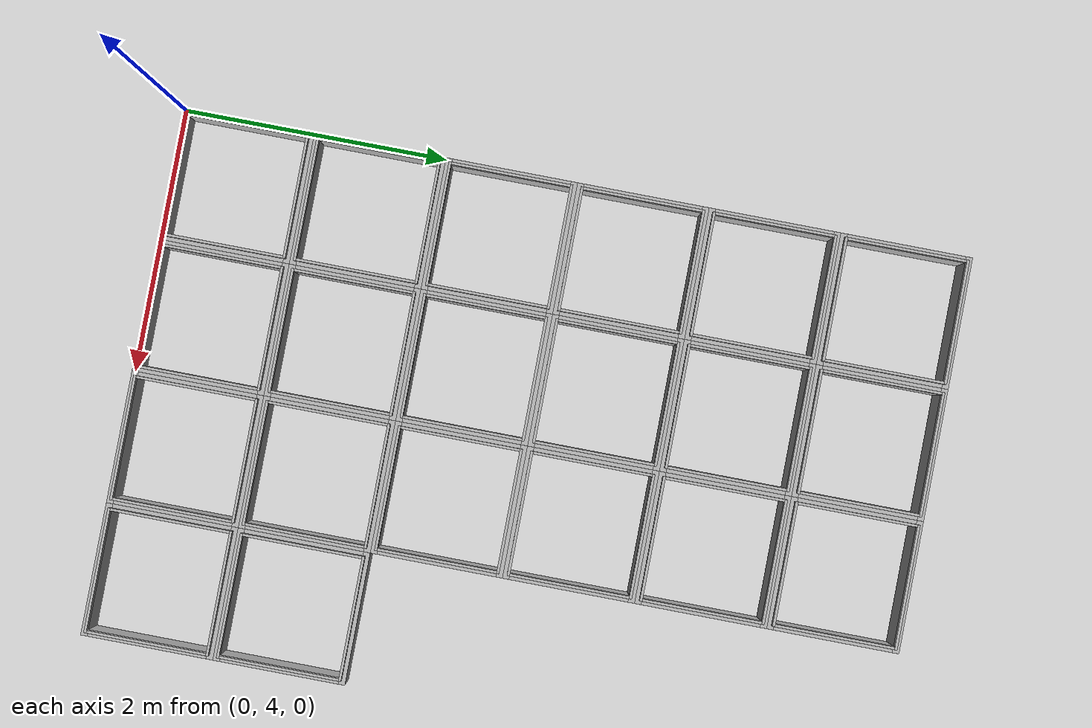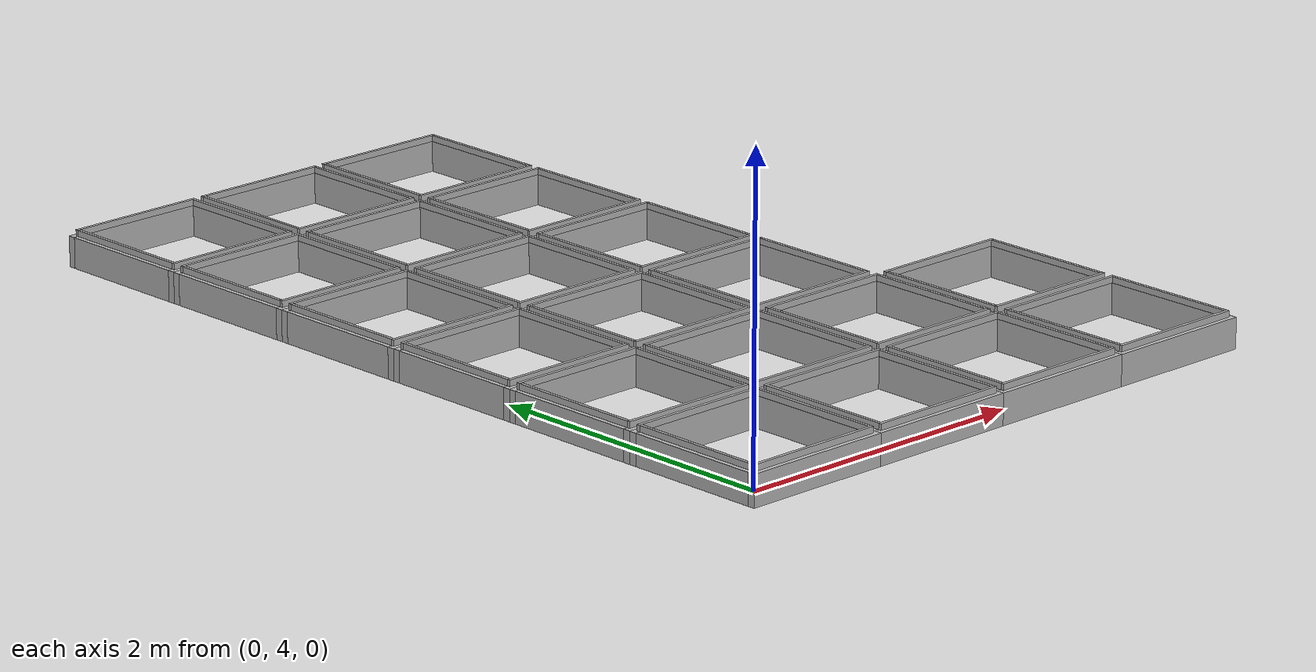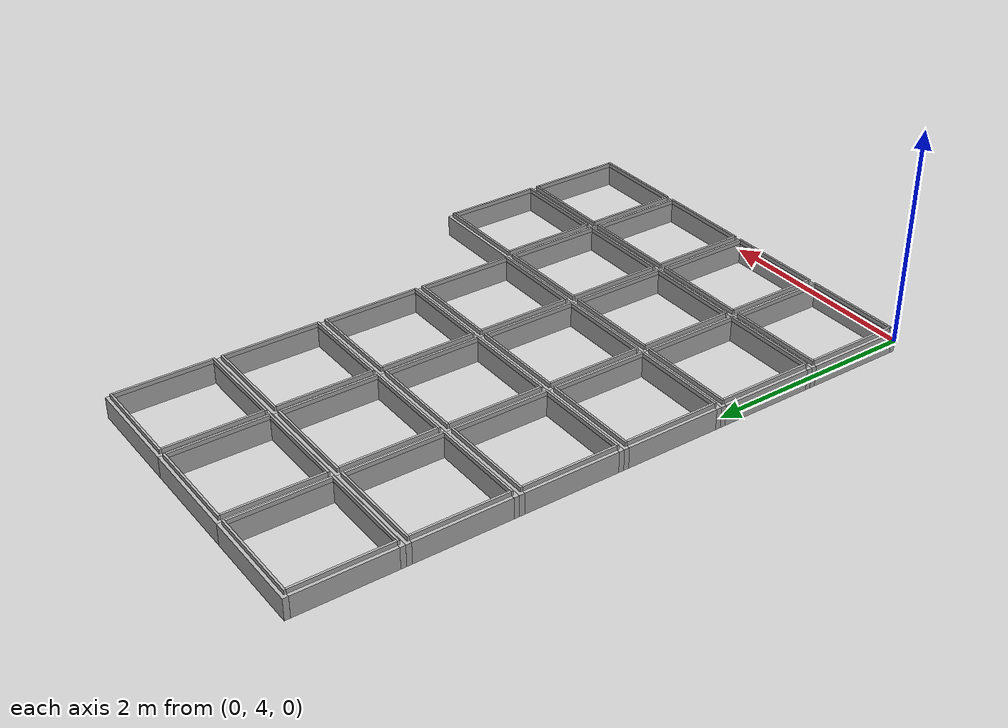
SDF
<sdf version="1.4">
 <model name="Auto Store Frame">
  <static>true</static>
  <link name="cell_04">
   <pose>0.5 4.5 0 0 0 0</pose>
   <collision name="frame_collision_x1">
    <pose>0 -0.475 0 0 0 0</pose>
    <geometry><box><size>1 0.05 0.2 0 0 0</size></box></geometry>
   </collision>
   <collision name="frame_collision_x2">
    <pose>0 0.475 0 0 0 0</pose>
    <geometry><box><size>1 0.05 0.2 0 0 0</size></box></geometry>
   </collision>
   <collision name="frame_collision_y1">
    <pose>-0.475 0 0 0 0 0</pose>
    <geometry><box><size>0.05 0.9 0.2 0 0 0</size></box></geometry>
   </collision>
   <collision name="frame_collision_y2">
    <pose>0.475 0 0 0 0 0</pose>
    <geometry><box><size>0.05 0.9 0.2 0 0 0</size></box></geometry>
   </collision>
   <collision name="guide_collision_x1">
    <pose>0 -0.46 0.12 0 0 0</pose>
    <geometry><box><size>0.94 0.02 0.04 0 0 0</size></box></geometry>
   </collision>
   <collision name="guide_collision_x2">
    <pose>0 0.46 0.12 0 0 0</pose>
    <geometry><box><size>0.94 0.02 0.04 0 0 0</size></box></geometry>
   </collision>
   <collision name="guide_collision_y1">
    <pose>-0.46 0 0.12 0 0 0</pose>
    <geometry><box><size>0.02 0.9 0.04 0 0 0</size></box></geometry>
   </collision>
   <collision name="guide_collision_y2">
    <pose>0.46 0 0.12 0 0 0</pose>
    <geometry><box><size>0.02 0.9 0.04 0 0 0</size></box></geometry>
   </collision>
   <visual name="frame_visual_x1">
    <pose>0 -0.475 0 0 0 0</pose>
    <geometry><box><size>1 0.05 0.2 0 0 0</size></box></geometry>
   </visual>
   <visual name="frame_visual_x2">
    <pose>0 0.475 0 0 0 0</pose>
    <geometry><box><size>1 0.05 0.2 0 0 0</size></box></geometry>
   </visual>
   <visual name="frame_visual_y1">
    <pose>-0.475 0 0 0 0 0</pose>
    <geometry><box><size>0.05 0.9 0.2 0 0 0</size></box></geometry>
   </visual>
   <visual name="frame_visual_y2">
    <pose>0.475 0 0 0 0 0</pose>
    <geometry><box><size>0.05 0.9 0.2 0 0 0</size></box></geometry>
   </visual>
   <visual name="guide_visual_x1">
    <pose>0 -0.46 0.12 0 0 0</pose>
    <geometry><box><size>0.94 0.02 0.04 0 0 0</size></box></geometry>
   </visual>
   <visual name="guide_visual_x2">
    <pose>0 0.46 0.12 0 0 0</pose>
    <geometry><box><size>0.94 0.02 0.04 0 0 0</size></box></geometry>
   </visual>
   <visual name="guide_visual_y1">
    <pose>-0.46 0 0.12 0 0 0</pose>
    <geometry><box><size>0.02 0.9 0.04 0 0 0</size></box></geometry>
   </visual>
   <visual name="guide_visual_y2">
    <pose>0.46 0 0.12 0 0 0</pose>
    <geometry><box><size>0.02 0.9 0.04 0 0 0</size></box></geometry>
   </visual>
  </link>
  <link name="cell_05">
   <pose>0.5 5.5 0 0 0 0</pose>
   <collision name="frame_collision_x1">
    <pose>0 -0.475 0 0 0 0</pose>
    <geometry><box><size>1 0.05 0.2 0 0 0</size></box></geometry>
   </collision>
   <collision name="frame_collision_x2">
    <pose>0 0.475 0 0 0 0</pose>
    <geometry><box><size>1 0.05 0.2 0 0 0</size></box></geometry>
   </collision>
   <collision name="frame_collision_y1">
    <pose>-0.475 0 0 0 0 0</pose>
    <geometry><box><size>0.05 0.9 0.2 0 0 0</size></box></geometry>
   </collision>
   <collision name="frame_collision_y2">
    <pose>0.475 0 0 0 0 0</pose>
    <geometry><box><size>0.05 0.9 0.2 0 0 0</size></box></geometry>
   </collision>
   <collision name="guide_collision_x1">
    <pose>0 -0.46 0.12 0 0 0</pose>
    <geometry><box><size>0.94 0.02 0.04 0 0 0</size></box></geometry>
   </collision>
   <collision name="guide_collision_x2">
    <pose>0 0.46 0.12 0 0 0</pose>
    <geometry><box><size>0.94 0.02 0.04 0 0 0</size></box></geometry>
   </collision>
   <collision name="guide_collision_y1">
    <pose>-0.46 0 0.12 0 0 0</pose>
    <geometry><box><size>0.02 0.9 0.04 0 0 0</size></box></geometry>
   </collision>
   <collision name="guide_collision_y2">
    <pose>0.46 0 0.12 0 0 0</pose>
    <geometry><box><size>0.02 0.9 0.04 0 0 0</size></box></geometry>
   </collision>
   <visual name="frame_visual_x1">
    <pose>0 -0.475 0 0 0 0</pose>
    <geometry><box><size>1 0.05 0.2 0 0 0</size></box></geometry>
   </visual>
   <visual name="frame_visual_x2">
    <pose>0 0.475 0 0 0 0</pose>
    <geometry><box><size>1 0.05 0.2 0 0 0</size></box></geometry>
   </visual>
   <visual name="frame_visual_y1">
    <pose>-0.475 0 0 0 0 0</pose>
    <geometry><box><size>0.05 0.9 0.2 0 0 0</size></box></geometry>
   </visual>
   <visual name="frame_visual_y2">
    <pose>0.475 0 0 0 0 0</pose>
    <geometry><box><size>0.05 0.9 0.2 0 0 0</size></box></geometry>
   </visual>
   <visual name="guide_visual_x1">
    <pose>0 -0.46 0.12 0 0 0</pose>
    <geometry><box><size>0.94 0.02 0.04 0 0 0</size></box></geometry>
   </visual>
   <visual name="guide_visual_x2">
    <pose>0 0.46 0.12 0 0 0</pose>
    <geometry><box><size>0.94 0.02 0.04 0 0 0</size></box></geometry>
   </visual>
   <visual name="guide_visual_y1">
    <pose>-0.46 0 0.12 0 0 0</pose>
    <geometry><box><size>0.02 0.9 0.04 0 0 0</size></box></geometry>
   </visual>
   <visual name="guide_visual_y2">
    <pose>0.46 0 0.12 0 0 0</pose>
    <geometry><box><size>0.02 0.9 0.04 0 0 0</size></box></geometry>
   </visual>
  </link>
  <link name="cell_06">
   <pose>0.5 6.5 0 0 0 0</pose>
   <collision name="frame_collision_x1">
    <pose>0 -0.475 0 0 0 0</pose>
    <geometry><box><size>1 0.05 0.2 0 0 0</size></box></geometry>
   </collision>
   <collision name="frame_collision_x2">
    <pose>0 0.475 0 0 0 0</pose>
    <geometry><box><size>1 0.05 0.2 0 0 0</size></box></geometry>
   </collision>
   <collision name="frame_collision_y1">
    <pose>-0.475 0 0 0 0 0</pose>
    <geometry><box><size>0.05 0.9 0.2 0 0 0</size></box></geometry>
   </collision>
   <collision name="frame_collision_y2">
    <pose>0.475 0 0 0 0 0</pose>
    <geometry><box><size>0.05 0.9 0.2 0 0 0</size></box></geometry>
   </collision>
   <collision name="guide_collision_x1">
    <pose>0 -0.46 0.12 0 0 0</pose>
    <geometry><box><size>0.94 0.02 0.04 0 0 0</size></box></geometry>
   </collision>
   <collision name="guide_collision_x2">
    <pose>0 0.46 0.12 0 0 0</pose>
    <geometry><box><size>0.94 0.02 0.04 0 0 0</size></box></geometry>
   </collision>
   <collision name="guide_collision_y1">
    <pose>-0.46 0 0.12 0 0 0</pose>
    <geometry><box><size>0.02 0.9 0.04 0 0 0</size></box></geometry>
   </collision>
   <collision name="guide_collision_y2">
    <pose>0.46 0 0.12 0 0 0</pose>
    <geometry><box><size>0.02 0.9 0.04 0 0 0</size></box></geometry>
   </collision>
   <visual name="frame_visual_x1">
    <pose>0 -0.475 0 0 0 0</pose>
    <geometry><box><size>1 0.05 0.2 0 0 0</size></box></geometry>
   </visual>
   <visual name="frame_visual_x2">
    <pose>0 0.475 0 0 0 0</pose>
    <geometry><box><size>1 0.05 0.2 0 0 0</size></box></geometry>
   </visual>
   <visual name="frame_visual_y1">
    <pose>-0.475 0 0 0 0 0</pose>
    <geometry><box><size>0.05 0.9 0.2 0 0 0</size></box></geometry>
   </visual>
   <visual name="frame_visual_y2">
    <pose>0.475 0 0 0 0 0</pose>
    <geometry><box><size>0.05 0.9 0.2 0 0 0</size></box></geometry>
   </visual>
   <visual name="guide_visual_x1">
    <pose>0 -0.46 0.12 0 0 0</pose>
    <geometry><box><size>0.94 0.02 0.04 0 0 0</size></box></geometry>
   </visual>
   <visual name="guide_visual_x2">
    <pose>0 0.46 0.12 0 0 0</pose>
    <geometry><box><size>0.94 0.02 0.04 0 0 0</size></box></geometry>
   </visual>
   <visual name="guide_visual_y1">
    <pose>-0.46 0 0.12 0 0 0</pose>
    <geometry><box><size>0.02 0.9 0.04 0 0 0</size></box></geometry>
   </visual>
   <visual name="guide_visual_y2">
    <pose>0.46 0 0.12 0 0 0</pose>
    <geometry><box><size>0.02 0.9 0.04 0 0 0</size></box></geometry>
   </visual>
  </link>
  <link name="cell_07">
   <pose>0.5 7.5 0 0 0 0</pose>
   <collision name="frame_collision_x1">
    <pose>0 -0.475 0 0 0 0</pose>
    <geometry><box><size>1 0.05 0.2 0 0 0</size></box></geometry>
   </collision>
   <collision name="frame_collision_x2">
    <pose>0 0.475 0 0 0 0</pose>
    <geometry><box><size>1 0.05 0.2 0 0 0</size></box></geometry>
   </collision>
   <collision name="frame_collision_y1">
    <pose>-0.475 0 0 0 0 0</pose>
    <geometry><box><size>0.05 0.9 0.2 0 0 0</size></box></geometry>
   </collision>
   <collision name="frame_collision_y2">
    <pose>0.475 0 0 0 0 0</pose>
    <geometry><box><size>0.05 0.9 0.2 0 0 0</size></box></geometry>
   </collision>
   <collision name="guide_collision_x1">
    <pose>0 -0.46 0.12 0 0 0</pose>
    <geometry><box><size>0.94 0.02 0.04 0 0 0</size></box></geometry>
   </collision>
   <collision name="guide_collision_x2">
    <pose>0 0.46 0.12 0 0 0</pose>
    <geometry><box><size>0.94 0.02 0.04 0 0 0</size></box></geometry>
   </collision>
   <collision name="guide_collision_y1">
    <pose>-0.46 0 0.12 0 0 0</pose>
    <geometry><box><size>0.02 0.9 0.04 0 0 0</size></box></geometry>
   </collision>
   <collision name="guide_collision_y2">
    <pose>0.46 0 0.12 0 0 0</pose>
    <geometry><box><size>0.02 0.9 0.04 0 0 0</size></box></geometry>
   </collision>
   <visual name="frame_visual_x1">
    <pose>0 -0.475 0 0 0 0</pose>
    <geometry><box><size>1 0.05 0.2 0 0 0</size></box></geometry>
   </visual>
   <visual name="frame_visual_x2">
    <pose>0 0.475 0 0 0 0</pose>
    <geometry><box><size>1 0.05 0.2 0 0 0</size></box></geometry>
   </visual>
   <visual name="frame_visual_y1">
    <pose>-0.475 0 0 0 0 0</pose>
    <geometry><box><size>0.05 0.9 0.2 0 0 0</size></box></geometry>
   </visual>
   <visual name="frame_visual_y2">
    <pose>0.475 0 0 0 0 0</pose>
    <geometry><box><size>0.05 0.9 0.2 0 0 0</size></box></geometry>
   </visual>
   <visual name="guide_visual_x1">
    <pose>0 -0.46 0.12 0 0 0</pose>
    <geometry><box><size>0.94 0.02 0.04 0 0 0</size></box></geometry>
   </visual>
   <visual name="guide_visual_x2">
    <pose>0 0.46 0.12 0 0 0</pose>
    <geometry><box><size>0.94 0.02 0.04 0 0 0</size></box></geometry>
   </visual>
   <visual name="guide_visual_y1">
    <pose>-0.46 0 0.12 0 0 0</pose>
    <geometry><box><size>0.02 0.9 0.04 0 0 0</size></box></geometry>
   </visual>
   <visual name="guide_visual_y2">
    <pose>0.46 0 0.12 0 0 0</pose>
    <geometry><box><size>0.02 0.9 0.04 0 0 0</size></box></geometry>
   </visual>
  </link>
  <link name="cell_08">
   <pose>0.5 8.5 0 0 0 0</pose>
   <collision name="frame_collision_x1">
    <pose>0 -0.475 0 0 0 0</pose>
    <geometry><box><size>1 0.05 0.2 0 0 0</size></box></geometry>
   </collision>
   <collision name="frame_collision_x2">
    <pose>0 0.475 0 0 0 0</pose>
    <geometry><box><size>1 0.05 0.2 0 0 0</size></box></geometry>
   </collision>
   <collision name="frame_collision_y1">
    <pose>-0.475 0 0 0 0 0</pose>
    <geometry><box><size>0.05 0.9 0.2 0 0 0</size></box></geometry>
   </collision>
   <collision name="frame_collision_y2">
    <pose>0.475 0 0 0 0 0</pose>
    <geometry><box><size>0.05 0.9 0.2 0 0 0</size></box></geometry>
   </collision>
   <collision name="guide_collision_x1">
    <pose>0 -0.46 0.12 0 0 0</pose>
    <geometry><box><size>0.94 0.02 0.04 0 0 0</size></box></geometry>
   </collision>
   <collision name="guide_collision_x2">
    <pose>0 0.46 0.12 0 0 0</pose>
    <geometry><box><size>0.94 0.02 0.04 0 0 0</size></box></geometry>
   </collision>
   <collision name="guide_collision_y1">
    <pose>-0.46 0 0.12 0 0 0</pose>
    <geometry><box><size>0.02 0.9 0.04 0 0 0</size></box></geometry>
   </collision>
   <collision name="guide_collision_y2">
    <pose>0.46 0 0.12 0 0 0</pose>
    <geometry><box><size>0.02 0.9 0.04 0 0 0</size></box></geometry>
   </collision>
   <visual name="frame_visual_x1">
    <pose>0 -0.475 0 0 0 0</pose>
    <geometry><box><size>1 0.05 0.2 0 0 0</size></box></geometry>
   </visual>
   <visual name="frame_visual_x2">
    <pose>0 0.475 0 0 0 0</pose>
    <geometry><box><size>1 0.05 0.2 0 0 0</size></box></geometry>
   </visual>
   <visual name="frame_visual_y1">
    <pose>-0.475 0 0 0 0 0</pose>
    <geometry><box><size>0.05 0.9 0.2 0 0 0</size></box></geometry>
   </visual>
   <visual name="frame_visual_y2">
    <pose>0.475 0 0 0 0 0</pose>
    <geometry><box><size>0.05 0.9 0.2 0 0 0</size></box></geometry>
   </visual>
   <visual name="guide_visual_x1">
    <pose>0 -0.46 0.12 0 0 0</pose>
    <geometry><box><size>0.94 0.02 0.04 0 0 0</size></box></geometry>
   </visual>
   <visual name="guide_visual_x2">
    <pose>0 0.46 0.12 0 0 0</pose>
    <geometry><box><size>0.94 0.02 0.04 0 0 0</size></box></geometry>
   </visual>
   <visual name="guide_visual_y1">
    <pose>-0.46 0 0.12 0 0 0</pose>
    <geometry><box><size>0.02 0.9 0.04 0 0 0</size></box></geometry>
   </visual>
   <visual name="guide_visual_y2">
    <pose>0.46 0 0.12 0 0 0</pose>
    <geometry><box><size>0.02 0.9 0.04 0 0 0</size></box></geometry>
   </visual>
  </link>
  <link name="cell_09">
   <pose>0.5 9.5 0 0 0 0</pose>
   <collision name="frame_collision_x1">
    <pose>0 -0.475 0 0 0 0</pose>
    <geometry><box><size>1 0.05 0.2 0 0 0</size></box></geometry>
   </collision>
   <collision name="frame_collision_x2">
    <pose>0 0.475 0 0 0 0</pose>
    <geometry><box><size>1 0.05 0.2 0 0 0</size></box></geometry>
   </collision>
   <collision name="frame_collision_y1">
    <pose>-0.475 0 0 0 0 0</pose>
    <geometry><box><size>0.05 0.9 0.2 0 0 0</size></box></geometry>
   </collision>
   <collision name="frame_collision_y2">
    <pose>0.475 0 0 0 0 0</pose>
    <geometry><box><size>0.05 0.9 0.2 0 0 0</size></box></geometry>
   </collision>
   <collision name="guide_collision_x1">
    <pose>0 -0.46 0.12 0 0 0</pose>
    <geometry><box><size>0.94 0.02 0.04 0 0 0</size></box></geometry>
   </collision>
   <collision name="guide_collision_x2">
    <pose>0 0.46 0.12 0 0 0</pose>
    <geometry><box><size>0.94 0.02 0.04 0 0 0</size></box></geometry>
   </collision>
   <collision name="guide_collision_y1">
    <pose>-0.46 0 0.12 0 0 0</pose>
    <geometry><box><size>0.02 0.9 0.04 0 0 0</size></box></geometry>
   </collision>
   <collision name="guide_collision_y2">
    <pose>0.46 0 0.12 0 0 0</pose>
    <geometry><box><size>0.02 0.9 0.04 0 0 0</size></box></geometry>
   </collision>
   <visual name="frame_visual_x1">
    <pose>0 -0.475 0 0 0 0</pose>
    <geometry><box><size>1 0.05 0.2 0 0 0</size></box></geometry>
   </visual>
   <visual name="frame_visual_x2">
    <pose>0 0.475 0 0 0 0</pose>
    <geometry><box><size>1 0.05 0.2 0 0 0</size></box></geometry>
   </visual>
   <visual name="frame_visual_y1">
    <pose>-0.475 0 0 0 0 0</pose>
    <geometry><box><size>0.05 0.9 0.2 0 0 0</size></box></geometry>
   </visual>
   <visual name="frame_visual_y2">
    <pose>0.475 0 0 0 0 0</pose>
    <geometry><box><size>0.05 0.9 0.2 0 0 0</size></box></geometry>
   </visual>
   <visual name="guide_visual_x1">
    <pose>0 -0.46 0.12 0 0 0</pose>
    <geometry><box><size>0.94 0.02 0.04 0 0 0</size></box></geometry>
   </visual>
   <visual name="guide_visual_x2">
    <pose>0 0.46 0.12 0 0 0</pose>
    <geometry><box><size>0.94 0.02 0.04 0 0 0</size></box></geometry>
   </visual>
   <visual name="guide_visual_y1">
    <pose>-0.46 0 0.12 0 0 0</pose>
    <geometry><box><size>0.02 0.9 0.04 0 0 0</size></box></geometry>
   </visual>
   <visual name="guide_visual_y2">
    <pose>0.46 0 0.12 0 0 0</pose>
    <geometry><box><size>0.02 0.9 0.04 0 0 0</size></box></geometry>
   </visual>
  </link>
  <link name="cell_14">
   <pose>1.5 4.5 0 0 0 0</pose>
   <collision name="frame_collision_x1">
    <pose>0 -0.475 0 0 0 0</pose>
    <geometry><box><size>1 0.05 0.2 0 0 0</size></box></geometry>
   </collision>
   <collision name="frame_collision_x2">
    <pose>0 0.475 0 0 0 0</pose>
    <geometry><box><size>1 0.05 0.2 0 0 0</size></box></geometry>
   </collision>
   <collision name="frame_collision_y1">
    <pose>-0.475 0 0 0 0 0</pose>
    <geometry><box><size>0.05 0.9 0.2 0 0 0</size></box></geometry>
   </collision>
   <collision name="frame_collision_y2">
    <pose>0.475 0 0 0 0 0</pose>
    <geometry><box><size>0.05 0.9 0.2 0 0 0</size></box></geometry>
   </collision>
   <collision name="guide_collision_x1">
    <pose>0 -0.46 0.12 0 0 0</pose>
    <geometry><box><size>0.94 0.02 0.04 0 0 0</size></box></geometry>
   </collision>
   <collision name="guide_collision_x2">
    <pose>0 0.46 0.12 0 0 0</pose>
    <geometry><box><size>0.94 0.02 0.04 0 0 0</size></box></geometry>
   </collision>
   <collision name="guide_collision_y1">
    <pose>-0.46 0 0.12 0 0 0</pose>
    <geometry><box><size>0.02 0.9 0.04 0 0 0</size></box></geometry>
   </collision>
   <collision name="guide_collision_y2">
    <pose>0.46 0 0.12 0 0 0</pose>
    <geometry><box><size>0.02 0.9 0.04 0 0 0</size></box></geometry>
   </collision>
   <visual name="frame_visual_x1">
    <pose>0 -0.475 0 0 0 0</pose>
    <geometry><box><size>1 0.05 0.2 0 0 0</size></box></geometry>
   </visual>
   <visual name="frame_visual_x2">
    <pose>0 0.475 0 0 0 0</pose>
    <geometry><box><size>1 0.05 0.2 0 0 0</size></box></geometry>
   </visual>
   <visual name="frame_visual_y1">
    <pose>-0.475 0 0 0 0 0</pose>
    <geometry><box><size>0.05 0.9 0.2 0 0 0</size></box></geometry>
   </visual>
   <visual name="frame_visual_y2">
    <pose>0.475 0 0 0 0 0</pose>
    <geometry><box><size>0.05 0.9 0.2 0 0 0</size></box></geometry>
   </visual>
   <visual name="guide_visual_x1">
    <pose>0 -0.46 0.12 0 0 0</pose>
    <geometry><box><size>0.94 0.02 0.04 0 0 0</size></box></geometry>
   </visual>
   <visual name="guide_visual_x2">
    <pose>0 0.46 0.12 0 0 0</pose>
    <geometry><box><size>0.94 0.02 0.04 0 0 0</size></box></geometry>
   </visual>
   <visual name="guide_visual_y1">
    <pose>-0.46 0 0.12 0 0 0</pose>
    <geometry><box><size>0.02 0.9 0.04 0 0 0</size></box></geometry>
   </visual>
   <visual name="guide_visual_y2">
    <pose>0.46 0 0.12 0 0 0</pose>
    <geometry><box><size>0.02 0.9 0.04 0 0 0</size></box></geometry>
   </visual>
  </link>
  <link name="cell_15">
   <pose>1.5 5.5 0 0 0 0</pose>
   <collision name="frame_collision_x1">
    <pose>0 -0.475 0 0 0 0</pose>
    <geometry><box><size>1 0.05 0.2 0 0 0</size></box></geometry>
   </collision>
   <collision name="frame_collision_x2">
    <pose>0 0.475 0 0 0 0</pose>
    <geometry><box><size>1 0.05 0.2 0 0 0</size></box></geometry>
   </collision>
   <collision name="frame_collision_y1">
    <pose>-0.475 0 0 0 0 0</pose>
    <geometry><box><size>0.05 0.9 0.2 0 0 0</size></box></geometry>
   </collision>
   <collision name="frame_collision_y2">
    <pose>0.475 0 0 0 0 0</pose>
    <geometry><box><size>0.05 0.9 0.2 0 0 0</size></box></geometry>
   </collision>
   <collision name="guide_collision_x1">
    <pose>0 -0.46 0.12 0 0 0</pose>
    <geometry><box><size>0.94 0.02 0.04 0 0 0</size></box></geometry>
   </collision>
   <collision name="guide_collision_x2">
    <pose>0 0.46 0.12 0 0 0</pose>
    <geometry><box><size>0.94 0.02 0.04 0 0 0</size></box></geometry>
   </collision>
   <collision name="guide_collision_y1">
    <pose>-0.46 0 0.12 0 0 0</pose>
    <geometry><box><size>0.02 0.9 0.04 0 0 0</size></box></geometry>
   </collision>
   <collision name="guide_collision_y2">
    <pose>0.46 0 0.12 0 0 0</pose>
    <geometry><box><size>0.02 0.9 0.04 0 0 0</size></box></geometry>
   </collision>
   <visual name="frame_visual_x1">
    <pose>0 -0.475 0 0 0 0</pose>
    <geometry><box><size>1 0.05 0.2 0 0 0</size></box></geometry>
   </visual>
   <visual name="frame_visual_x2">
    <pose>0 0.475 0 0 0 0</pose>
    <geometry><box><size>1 0.05 0.2 0 0 0</size></box></geometry>
   </visual>
   <visual name="frame_visual_y1">
    <pose>-0.475 0 0 0 0 0</pose>
    <geometry><box><size>0.05 0.9 0.2 0 0 0</size></box></geometry>
   </visual>
   <visual name="frame_visual_y2">
    <pose>0.475 0 0 0 0 0</pose>
    <geometry><box><size>0.05 0.9 0.2 0 0 0</size></box></geometry>
   </visual>
   <visual name="guide_visual_x1">
    <pose>0 -0.46 0.12 0 0 0</pose>
    <geometry><box><size>0.94 0.02 0.04 0 0 0</size></box></geometry>
   </visual>
   <visual name="guide_visual_x2">
    <pose>0 0.46 0.12 0 0 0</pose>
    <geometry><box><size>0.94 0.02 0.04 0 0 0</size></box></geometry>
   </visual>
   <visual name="guide_visual_y1">
    <pose>-0.46 0 0.12 0 0 0</pose>
    <geometry><box><size>0.02 0.9 0.04 0 0 0</size></box></geometry>
   </visual>
   <visual name="guide_visual_y2">
    <pose>0.46 0 0.12 0 0 0</pose>
    <geometry><box><size>0.02 0.9 0.04 0 0 0</size></box></geometry>
   </visual>
  </link>
  <link name="cell_16">
   <pose>1.5 6.5 0 0 0 0</pose>
   <collision name="frame_collision_x1">
    <pose>0 -0.475 0 0 0 0</pose>
    <geometry><box><size>1 0.05 0.2 0 0 0</size></box></geometry>
   </collision>
   <collision name="frame_collision_x2">
    <pose>0 0.475 0 0 0 0</pose>
    <geometry><box><size>1 0.05 0.2 0 0 0</size></box></geometry>
   </collision>
   <collision name="frame_collision_y1">
    <pose>-0.475 0 0 0 0 0</pose>
    <geometry><box><size>0.05 0.9 0.2 0 0 0</size></box></geometry>
   </collision>
   <collision name="frame_collision_y2">
    <pose>0.475 0 0 0 0 0</pose>
    <geometry><box><size>0.05 0.9 0.2 0 0 0</size></box></geometry>
   </collision>
   <collision name="guide_collision_x1">
    <pose>0 -0.46 0.12 0 0 0</pose>
    <geometry><box><size>0.94 0.02 0.04 0 0 0</size></box></geometry>
   </collision>
   <collision name="guide_collision_x2">
    <pose>0 0.46 0.12 0 0 0</pose>
    <geometry><box><size>0.94 0.02 0.04 0 0 0</size></box></geometry>
   </collision>
   <collision name="guide_collision_y1">
    <pose>-0.46 0 0.12 0 0 0</pose>
    <geometry><box><size>0.02 0.9 0.04 0 0 0</size></box></geometry>
   </collision>
   <collision name="guide_collision_y2">
    <pose>0.46 0 0.12 0 0 0</pose>
    <geometry><box><size>0.02 0.9 0.04 0 0 0</size></box></geometry>
   </collision>
   <visual name="frame_visual_x1">
    <pose>0 -0.475 0 0 0 0</pose>
    <geometry><box><size>1 0.05 0.2 0 0 0</size></box></geometry>
   </visual>
   <visual name="frame_visual_x2">
    <pose>0 0.475 0 0 0 0</pose>
    <geometry><box><size>1 0.05 0.2 0 0 0</size></box></geometry>
   </visual>
   <visual name="frame_visual_y1">
    <pose>-0.475 0 0 0 0 0</pose>
    <geometry><box><size>0.05 0.9 0.2 0 0 0</size></box></geometry>
   </visual>
   <visual name="frame_visual_y2">
    <pose>0.475 0 0 0 0 0</pose>
    <geometry><box><size>0.05 0.9 0.2 0 0 0</size></box></geometry>
   </visual>
   <visual name="guide_visual_x1">
    <pose>0 -0.46 0.12 0 0 0</pose>
    <geometry><box><size>0.94 0.02 0.04 0 0 0</size></box></geometry>
   </visual>
   <visual name="guide_visual_x2">
    <pose>0 0.46 0.12 0 0 0</pose>
    <geometry><box><size>0.94 0.02 0.04 0 0 0</size></box></geometry>
   </visual>
   <visual name="guide_visual_y1">
    <pose>-0.46 0 0.12 0 0 0</pose>
    <geometry><box><size>0.02 0.9 0.04 0 0 0</size></box></geometry>
   </visual>
   <visual name="guide_visual_y2">
    <pose>0.46 0 0.12 0 0 0</pose>
    <geometry><box><size>0.02 0.9 0.04 0 0 0</size></box></geometry>
   </visual>
  </link>
  <link name="cell_17">
   <pose>1.5 7.5 0 0 0 0</pose>
   <collision name="frame_collision_x1">
    <pose>0 -0.475 0 0 0 0</pose>
    <geometry><box><size>1 0.05 0.2 0 0 0</size></box></geometry>
   </collision>
   <collision name="frame_collision_x2">
    <pose>0 0.475 0 0 0 0</pose>
    <geometry><box><size>1 0.05 0.2 0 0 0</size></box></geometry>
   </collision>
   <collision name="frame_collision_y1">
    <pose>-0.475 0 0 0 0 0</pose>
    <geometry><box><size>0.05 0.9 0.2 0 0 0</size></box></geometry>
   </collision>
   <collision name="frame_collision_y2">
    <pose>0.475 0 0 0 0 0</pose>
    <geometry><box><size>0.05 0.9 0.2 0 0 0</size></box></geometry>
   </collision>
   <collision name="guide_collision_x1">
    <pose>0 -0.46 0.12 0 0 0</pose>
    <geometry><box><size>0.94 0.02 0.04 0 0 0</size></box></geometry>
   </collision>
   <collision name="guide_collision_x2">
    <pose>0 0.46 0.12 0 0 0</pose>
    <geometry><box><size>0.94 0.02 0.04 0 0 0</size></box></geometry>
   </collision>
   <collision name="guide_collision_y1">
    <pose>-0.46 0 0.12 0 0 0</pose>
    <geometry><box><size>0.02 0.9 0.04 0 0 0</size></box></geometry>
   </collision>
   <collision name="guide_collision_y2">
    <pose>0.46 0 0.12 0 0 0</pose>
    <geometry><box><size>0.02 0.9 0.04 0 0 0</size></box></geometry>
   </collision>
   <visual name="frame_visual_x1">
    <pose>0 -0.475 0 0 0 0</pose>
    <geometry><box><size>1 0.05 0.2 0 0 0</size></box></geometry>
   </visual>
   <visual name="frame_visual_x2">
    <pose>0 0.475 0 0 0 0</pose>
    <geometry><box><size>1 0.05 0.2 0 0 0</size></box></geometry>
   </visual>
   <visual name="frame_visual_y1">
    <pose>-0.475 0 0 0 0 0</pose>
    <geometry><box><size>0.05 0.9 0.2 0 0 0</size></box></geometry>
   </visual>
   <visual name="frame_visual_y2">
    <pose>0.475 0 0 0 0 0</pose>
    <geometry><box><size>0.05 0.9 0.2 0 0 0</size></box></geometry>
   </visual>
   <visual name="guide_visual_x1">
    <pose>0 -0.46 0.12 0 0 0</pose>
    <geometry><box><size>0.94 0.02 0.04 0 0 0</size></box></geometry>
   </visual>
   <visual name="guide_visual_x2">
    <pose>0 0.46 0.12 0 0 0</pose>
    <geometry><box><size>0.94 0.02 0.04 0 0 0</size></box></geometry>
   </visual>
   <visual name="guide_visual_y1">
    <pose>-0.46 0 0.12 0 0 0</pose>
    <geometry><box><size>0.02 0.9 0.04 0 0 0</size></box></geometry>
   </visual>
   <visual name="guide_visual_y2">
    <pose>0.46 0 0.12 0 0 0</pose>
    <geometry><box><size>0.02 0.9 0.04 0 0 0</size></box></geometry>
   </visual>
  </link>
  <link name="cell_18">
   <pose>1.5 8.5 0 0 0 0</pose>
   <collision name="frame_collision_x1">
    <pose>0 -0.475 0 0 0 0</pose>
    <geometry><box><size>1 0.05 0.2 0 0 0</size></box></geometry>
   </collision>
   <collision name="frame_collision_x2">
    <pose>0 0.475 0 0 0 0</pose>
    <geometry><box><size>1 0.05 0.2 0 0 0</size></box></geometry>
   </collision>
   <collision name="frame_collision_y1">
    <pose>-0.475 0 0 0 0 0</pose>
    <geometry><box><size>0.05 0.9 0.2 0 0 0</size></box></geometry>
   </collision>
   <collision name="frame_collision_y2">
    <pose>0.475 0 0 0 0 0</pose>
    <geometry><box><size>0.05 0.9 0.2 0 0 0</size></box></geometry>
   </collision>
   <collision name="guide_collision_x1">
    <pose>0 -0.46 0.12 0 0 0</pose>
    <geometry><box><size>0.94 0.02 0.04 0 0 0</size></box></geometry>
   </collision>
   <collision name="guide_collision_x2">
    <pose>0 0.46 0.12 0 0 0</pose>
    <geometry><box><size>0.94 0.02 0.04 0 0 0</size></box></geometry>
   </collision>
   <collision name="guide_collision_y1">
    <pose>-0.46 0 0.12 0 0 0</pose>
    <geometry><box><size>0.02 0.9 0.04 0 0 0</size></box></geometry>
   </collision>
   <collision name="guide_collision_y2">
    <pose>0.46 0 0.12 0 0 0</pose>
    <geometry><box><size>0.02 0.9 0.04 0 0 0</size></box></geometry>
   </collision>
   <visual name="frame_visual_x1">
    <pose>0 -0.475 0 0 0 0</pose>
    <geometry><box><size>1 0.05 0.2 0 0 0</size></box></geometry>
   </visual>
   <visual name="frame_visual_x2">
    <pose>0 0.475 0 0 0 0</pose>
    <geometry><box><size>1 0.05 0.2 0 0 0</size></box></geometry>
   </visual>
   <visual name="frame_visual_y1">
    <pose>-0.475 0 0 0 0 0</pose>
    <geometry><box><size>0.05 0.9 0.2 0 0 0</size></box></geometry>
   </visual>
   <visual name="frame_visual_y2">
    <pose>0.475 0 0 0 0 0</pose>
    <geometry><box><size>0.05 0.9 0.2 0 0 0</size></box></geometry>
   </visual>
   <visual name="guide_visual_x1">
    <pose>0 -0.46 0.12 0 0 0</pose>
    <geometry><box><size>0.94 0.02 0.04 0 0 0</size></box></geometry>
   </visual>
   <visual name="guide_visual_x2">
    <pose>0 0.46 0.12 0 0 0</pose>
    <geometry><box><size>0.94 0.02 0.04 0 0 0</size></box></geometry>
   </visual>
   <visual name="guide_visual_y1">
    <pose>-0.46 0 0.12 0 0 0</pose>
    <geometry><box><size>0.02 0.9 0.04 0 0 0</size></box></geometry>
   </visual>
   <visual name="guide_visual_y2">
    <pose>0.46 0 0.12 0 0 0</pose>
    <geometry><box><size>0.02 0.9 0.04 0 0 0</size></box></geometry>
   </visual>
  </link>
  <link name="cell_19">
   <pose>1.5 9.5 0 0 0 0</pose>
   <collision name="frame_collision_x1">
    <pose>0 -0.475 0 0 0 0</pose>
    <geometry><box><size>1 0.05 0.2 0 0 0</size></box></geometry>
   </collision>
   <collision name="frame_collision_x2">
    <pose>0 0.475 0 0 0 0</pose>
    <geometry><box><size>1 0.05 0.2 0 0 0</size></box></geometry>
   </collision>
   <collision name="frame_collision_y1">
    <pose>-0.475 0 0 0 0 0</pose>
    <geometry><box><size>0.05 0.9 0.2 0 0 0</size></box></geometry>
   </collision>
   <collision name="frame_collision_y2">
    <pose>0.475 0 0 0 0 0</pose>
    <geometry><box><size>0.05 0.9 0.2 0 0 0</size></box></geometry>
   </collision>
   <collision name="guide_collision_x1">
    <pose>0 -0.46 0.12 0 0 0</pose>
    <geometry><box><size>0.94 0.02 0.04 0 0 0</size></box></geometry>
   </collision>
   <collision name="guide_collision_x2">
    <pose>0 0.46 0.12 0 0 0</pose>
    <geometry><box><size>0.94 0.02 0.04 0 0 0</size></box></geometry>
   </collision>
   <collision name="guide_collision_y1">
    <pose>-0.46 0 0.12 0 0 0</pose>
    <geometry><box><size>0.02 0.9 0.04 0 0 0</size></box></geometry>
   </collision>
   <collision name="guide_collision_y2">
    <pose>0.46 0 0.12 0 0 0</pose>
    <geometry><box><size>0.02 0.9 0.04 0 0 0</size></box></geometry>
   </collision>
   <visual name="frame_visual_x1">
    <pose>0 -0.475 0 0 0 0</pose>
    <geometry><box><size>1 0.05 0.2 0 0 0</size></box></geometry>
   </visual>
   <visual name="frame_visual_x2">
    <pose>0 0.475 0 0 0 0</pose>
    <geometry><box><size>1 0.05 0.2 0 0 0</size></box></geometry>
   </visual>
   <visual name="frame_visual_y1">
    <pose>-0.475 0 0 0 0 0</pose>
    <geometry><box><size>0.05 0.9 0.2 0 0 0</size></box></geometry>
   </visual>
   <visual name="frame_visual_y2">
    <pose>0.475 0 0 0 0 0</pose>
    <geometry><box><size>0.05 0.9 0.2 0 0 0</size></box></geometry>
   </visual>
   <visual name="guide_visual_x1">
    <pose>0 -0.46 0.12 0 0 0</pose>
    <geometry><box><size>0.94 0.02 0.04 0 0 0</size></box></geometry>
   </visual>
   <visual name="guide_visual_x2">
    <pose>0 0.46 0.12 0 0 0</pose>
    <geometry><box><size>0.94 0.02 0.04 0 0 0</size></box></geometry>
   </visual>
   <visual name="guide_visual_y1">
    <pose>-0.46 0 0.12 0 0 0</pose>
    <geometry><box><size>0.02 0.9 0.04 0 0 0</size></box></geometry>
   </visual>
   <visual name="guide_visual_y2">
    <pose>0.46 0 0.12 0 0 0</pose>
    <geometry><box><size>0.02 0.9 0.04 0 0 0</size></box></geometry>
   </visual>
  </link>
  <link name="cell_24">
   <pose>2.5 4.5 0 0 0 0</pose>
   <collision name="frame_collision_x1">
    <pose>0 -0.475 0 0 0 0</pose>
    <geometry><box><size>1 0.05 0.2 0 0 0</size></box></geometry>
   </collision>
   <collision name="frame_collision_x2">
    <pose>0 0.475 0 0 0 0</pose>
    <geometry><box><size>1 0.05 0.2 0 0 0</size></box></geometry>
   </collision>
   <collision name="frame_collision_y1">
    <pose>-0.475 0 0 0 0 0</pose>
    <geometry><box><size>0.05 0.9 0.2 0 0 0</size></box></geometry>
   </collision>
   <collision name="frame_collision_y2">
    <pose>0.475 0 0 0 0 0</pose>
    <geometry><box><size>0.05 0.9 0.2 0 0 0</size></box></geometry>
   </collision>
   <collision name="guide_collision_x1">
    <pose>0 -0.46 0.12 0 0 0</pose>
    <geometry><box><size>0.94 0.02 0.04 0 0 0</size></box></geometry>
   </collision>
   <collision name="guide_collision_x2">
    <pose>0 0.46 0.12 0 0 0</pose>
    <geometry><box><size>0.94 0.02 0.04 0 0 0</size></box></geometry>
   </collision>
   <collision name="guide_collision_y1">
    <pose>-0.46 0 0.12 0 0 0</pose>
    <geometry><box><size>0.02 0.9 0.04 0 0 0</size></box></geometry>
   </collision>
   <collision name="guide_collision_y2">
    <pose>0.46 0 0.12 0 0 0</pose>
    <geometry><box><size>0.02 0.9 0.04 0 0 0</size></box></geometry>
   </collision>
   <visual name="frame_visual_x1">
    <pose>0 -0.475 0 0 0 0</pose>
    <geometry><box><size>1 0.05 0.2 0 0 0</size></box></geometry>
   </visual>
   <visual name="frame_visual_x2">
    <pose>0 0.475 0 0 0 0</pose>
    <geometry><box><size>1 0.05 0.2 0 0 0</size></box></geometry>
   </visual>
   <visual name="frame_visual_y1">
    <pose>-0.475 0 0 0 0 0</pose>
    <geometry><box><size>0.05 0.9 0.2 0 0 0</size></box></geometry>
   </visual>
   <visual name="frame_visual_y2">
    <pose>0.475 0 0 0 0 0</pose>
    <geometry><box><size>0.05 0.9 0.2 0 0 0</size></box></geometry>
   </visual>
   <visual name="guide_visual_x1">
    <pose>0 -0.46 0.12 0 0 0</pose>
    <geometry><box><size>0.94 0.02 0.04 0 0 0</size></box></geometry>
   </visual>
   <visual name="guide_visual_x2">
    <pose>0 0.46 0.12 0 0 0</pose>
    <geometry><box><size>0.94 0.02 0.04 0 0 0</size></box></geometry>
   </visual>
   <visual name="guide_visual_y1">
    <pose>-0.46 0 0.12 0 0 0</pose>
    <geometry><box><size>0.02 0.9 0.04 0 0 0</size></box></geometry>
   </visual>
   <visual name="guide_visual_y2">
    <pose>0.46 0 0.12 0 0 0</pose>
    <geometry><box><size>0.02 0.9 0.04 0 0 0</size></box></geometry>
   </visual>
  </link>
  <link name="cell_25">
   <pose>2.5 5.5 0 0 0 0</pose>
   <collision name="frame_collision_x1">
    <pose>0 -0.475 0 0 0 0</pose>
    <geometry><box><size>1 0.05 0.2 0 0 0</size></box></geometry>
   </collision>
   <collision name="frame_collision_x2">
    <pose>0 0.475 0 0 0 0</pose>
    <geometry><box><size>1 0.05 0.2 0 0 0</size></box></geometry>
   </collision>
   <collision name="frame_collision_y1">
    <pose>-0.475 0 0 0 0 0</pose>
    <geometry><box><size>0.05 0.9 0.2 0 0 0</size></box></geometry>
   </collision>
   <collision name="frame_collision_y2">
    <pose>0.475 0 0 0 0 0</pose>
    <geometry><box><size>0.05 0.9 0.2 0 0 0</size></box></geometry>
   </collision>
   <collision name="guide_collision_x1">
    <pose>0 -0.46 0.12 0 0 0</pose>
    <geometry><box><size>0.94 0.02 0.04 0 0 0</size></box></geometry>
   </collision>
   <collision name="guide_collision_x2">
    <pose>0 0.46 0.12 0 0 0</pose>
    <geometry><box><size>0.94 0.02 0.04 0 0 0</size></box></geometry>
   </collision>
   <collision name="guide_collision_y1">
    <pose>-0.46 0 0.12 0 0 0</pose>
    <geometry><box><size>0.02 0.9 0.04 0 0 0</size></box></geometry>
   </collision>
   <collision name="guide_collision_y2">
    <pose>0.46 0 0.12 0 0 0</pose>
    <geometry><box><size>0.02 0.9 0.04 0 0 0</size></box></geometry>
   </collision>
   <visual name="frame_visual_x1">
    <pose>0 -0.475 0 0 0 0</pose>
    <geometry><box><size>1 0.05 0.2 0 0 0</size></box></geometry>
   </visual>
   <visual name="frame_visual_x2">
    <pose>0 0.475 0 0 0 0</pose>
    <geometry><box><size>1 0.05 0.2 0 0 0</size></box></geometry>
   </visual>
   <visual name="frame_visual_y1">
    <pose>-0.475 0 0 0 0 0</pose>
    <geometry><box><size>0.05 0.9 0.2 0 0 0</size></box></geometry>
   </visual>
   <visual name="frame_visual_y2">
    <pose>0.475 0 0 0 0 0</pose>
    <geometry><box><size>0.05 0.9 0.2 0 0 0</size></box></geometry>
   </visual>
   <visual name="guide_visual_x1">
    <pose>0 -0.46 0.12 0 0 0</pose>
    <geometry><box><size>0.94 0.02 0.04 0 0 0</size></box></geometry>
   </visual>
   <visual name="guide_visual_x2">
    <pose>0 0.46 0.12 0 0 0</pose>
    <geometry><box><size>0.94 0.02 0.04 0 0 0</size></box></geometry>
   </visual>
   <visual name="guide_visual_y1">
    <pose>-0.46 0 0.12 0 0 0</pose>
    <geometry><box><size>0.02 0.9 0.04 0 0 0</size></box></geometry>
   </visual>
   <visual name="guide_visual_y2">
    <pose>0.46 0 0.12 0 0 0</pose>
    <geometry><box><size>0.02 0.9 0.04 0 0 0</size></box></geometry>
   </visual>
  </link>
  <link name="cell_26">
   <pose>2.5 6.5 0 0 0 0</pose>
   <collision name="frame_collision_x1">
    <pose>0 -0.475 0 0 0 0</pose>
    <geometry><box><size>1 0.05 0.2 0 0 0</size></box></geometry>
   </collision>
   <collision name="frame_collision_x2">
    <pose>0 0.475 0 0 0 0</pose>
    <geometry><box><size>1 0.05 0.2 0 0 0</size></box></geometry>
   </collision>
   <collision name="frame_collision_y1">
    <pose>-0.475 0 0 0 0 0</pose>
    <geometry><box><size>0.05 0.9 0.2 0 0 0</size></box></geometry>
   </collision>
   <collision name="frame_collision_y2">
    <pose>0.475 0 0 0 0 0</pose>
    <geometry><box><size>0.05 0.9 0.2 0 0 0</size></box></geometry>
   </collision>
   <collision name="guide_collision_x1">
    <pose>0 -0.46 0.12 0 0 0</pose>
    <geometry><box><size>0.94 0.02 0.04 0 0 0</size></box></geometry>
   </collision>
   <collision name="guide_collision_x2">
    <pose>0 0.46 0.12 0 0 0</pose>
    <geometry><box><size>0.94 0.02 0.04 0 0 0</size></box></geometry>
   </collision>
   <collision name="guide_collision_y1">
    <pose>-0.46 0 0.12 0 0 0</pose>
    <geometry><box><size>0.02 0.9 0.04 0 0 0</size></box></geometry>
   </collision>
   <collision name="guide_collision_y2">
    <pose>0.46 0 0.12 0 0 0</pose>
    <geometry><box><size>0.02 0.9 0.04 0 0 0</size></box></geometry>
   </collision>
   <visual name="frame_visual_x1">
    <pose>0 -0.475 0 0 0 0</pose>
    <geometry><box><size>1 0.05 0.2 0 0 0</size></box></geometry>
   </visual>
   <visual name="frame_visual_x2">
    <pose>0 0.475 0 0 0 0</pose>
    <geometry><box><size>1 0.05 0.2 0 0 0</size></box></geometry>
   </visual>
   <visual name="frame_visual_y1">
    <pose>-0.475 0 0 0 0 0</pose>
    <geometry><box><size>0.05 0.9 0.2 0 0 0</size></box></geometry>
   </visual>
   <visual name="frame_visual_y2">
    <pose>0.475 0 0 0 0 0</pose>
    <geometry><box><size>0.05 0.9 0.2 0 0 0</size></box></geometry>
   </visual>
   <visual name="guide_visual_x1">
    <pose>0 -0.46 0.12 0 0 0</pose>
    <geometry><box><size>0.94 0.02 0.04 0 0 0</size></box></geometry>
   </visual>
   <visual name="guide_visual_x2">
    <pose>0 0.46 0.12 0 0 0</pose>
    <geometry><box><size>0.94 0.02 0.04 0 0 0</size></box></geometry>
   </visual>
   <visual name="guide_visual_y1">
    <pose>-0.46 0 0.12 0 0 0</pose>
    <geometry><box><size>0.02 0.9 0.04 0 0 0</size></box></geometry>
   </visual>
   <visual name="guide_visual_y2">
    <pose>0.46 0 0.12 0 0 0</pose>
    <geometry><box><size>0.02 0.9 0.04 0 0 0</size></box></geometry>
   </visual>
  </link>
  <link name="cell_27">
   <pose>2.5 7.5 0 0 0 0</pose>
   <collision name="frame_collision_x1">
    <pose>0 -0.475 0 0 0 0</pose>
    <geometry><box><size>1 0.05 0.2 0 0 0</size></box></geometry>
   </collision>
   <collision name="frame_collision_x2">
    <pose>0 0.475 0 0 0 0</pose>
    <geometry><box><size>1 0.05 0.2 0 0 0</size></box></geometry>
   </collision>
   <collision name="frame_collision_y1">
    <pose>-0.475 0 0 0 0 0</pose>
    <geometry><box><size>0.05 0.9 0.2 0 0 0</size></box></geometry>
   </collision>
   <collision name="frame_collision_y2">
    <pose>0.475 0 0 0 0 0</pose>
    <geometry><box><size>0.05 0.9 0.2 0 0 0</size></box></geometry>
   </collision>
   <collision name="guide_collision_x1">
    <pose>0 -0.46 0.12 0 0 0</pose>
    <geometry><box><size>0.94 0.02 0.04 0 0 0</size></box></geometry>
   </collision>
   <collision name="guide_collision_x2">
    <pose>0 0.46 0.12 0 0 0</pose>
    <geometry><box><size>0.94 0.02 0.04 0 0 0</size></box></geometry>
   </collision>
   <collision name="guide_collision_y1">
    <pose>-0.46 0 0.12 0 0 0</pose>
    <geometry><box><size>0.02 0.9 0.04 0 0 0</size></box></geometry>
   </collision>
   <collision name="guide_collision_y2">
    <pose>0.46 0 0.12 0 0 0</pose>
    <geometry><box><size>0.02 0.9 0.04 0 0 0</size></box></geometry>
   </collision>
   <visual name="frame_visual_x1">
    <pose>0 -0.475 0 0 0 0</pose>
    <geometry><box><size>1 0.05 0.2 0 0 0</size></box></geometry>
   </visual>
   <visual name="frame_visual_x2">
    <pose>0 0.475 0 0 0 0</pose>
    <geometry><box><size>1 0.05 0.2 0 0 0</size></box></geometry>
   </visual>
   <visual name="frame_visual_y1">
    <pose>-0.475 0 0 0 0 0</pose>
    <geometry><box><size>0.05 0.9 0.2 0 0 0</size></box></geometry>
   </visual>
   <visual name="frame_visual_y2">
    <pose>0.475 0 0 0 0 0</pose>
    <geometry><box><size>0.05 0.9 0.2 0 0 0</size></box></geometry>
   </visual>
   <visual name="guide_visual_x1">
    <pose>0 -0.46 0.12 0 0 0</pose>
    <geometry><box><size>0.94 0.02 0.04 0 0 0</size></box></geometry>
   </visual>
   <visual name="guide_visual_x2">
    <pose>0 0.46 0.12 0 0 0</pose>
    <geometry><box><size>0.94 0.02 0.04 0 0 0</size></box></geometry>
   </visual>
   <visual name="guide_visual_y1">
    <pose>-0.46 0 0.12 0 0 0</pose>
    <geometry><box><size>0.02 0.9 0.04 0 0 0</size></box></geometry>
   </visual>
   <visual name="guide_visual_y2">
    <pose>0.46 0 0.12 0 0 0</pose>
    <geometry><box><size>0.02 0.9 0.04 0 0 0</size></box></geometry>
   </visual>
  </link>
  <link name="cell_28">
   <pose>2.5 8.5 0 0 0 0</pose>
   <collision name="frame_collision_x1">
    <pose>0 -0.475 0 0 0 0</pose>
    <geometry><box><size>1 0.05 0.2 0 0 0</size></box></geometry>
   </collision>
   <collision name="frame_collision_x2">
    <pose>0 0.475 0 0 0 0</pose>
    <geometry><box><size>1 0.05 0.2 0 0 0</size></box></geometry>
   </collision>
   <collision name="frame_collision_y1">
    <pose>-0.475 0 0 0 0 0</pose>
    <geometry><box><size>0.05 0.9 0.2 0 0 0</size></box></geometry>
   </collision>
   <collision name="frame_collision_y2">
    <pose>0.475 0 0 0 0 0</pose>
    <geometry><box><size>0.05 0.9 0.2 0 0 0</size></box></geometry>
   </collision>
   <collision name="guide_collision_x1">
    <pose>0 -0.46 0.12 0 0 0</pose>
    <geometry><box><size>0.94 0.02 0.04 0 0 0</size></box></geometry>
   </collision>
   <collision name="guide_collision_x2">
    <pose>0 0.46 0.12 0 0 0</pose>
    <geometry><box><size>0.94 0.02 0.04 0 0 0</size></box></geometry>
   </collision>
   <collision name="guide_collision_y1">
    <pose>-0.46 0 0.12 0 0 0</pose>
    <geometry><box><size>0.02 0.9 0.04 0 0 0</size></box></geometry>
   </collision>
   <collision name="guide_collision_y2">
    <pose>0.46 0 0.12 0 0 0</pose>
    <geometry><box><size>0.02 0.9 0.04 0 0 0</size></box></geometry>
   </collision>
   <visual name="frame_visual_x1">
    <pose>0 -0.475 0 0 0 0</pose>
    <geometry><box><size>1 0.05 0.2 0 0 0</size></box></geometry>
   </visual>
   <visual name="frame_visual_x2">
    <pose>0 0.475 0 0 0 0</pose>
    <geometry><box><size>1 0.05 0.2 0 0 0</size></box></geometry>
   </visual>
   <visual name="frame_visual_y1">
    <pose>-0.475 0 0 0 0 0</pose>
    <geometry><box><size>0.05 0.9 0.2 0 0 0</size></box></geometry>
   </visual>
   <visual name="frame_visual_y2">
    <pose>0.475 0 0 0 0 0</pose>
    <geometry><box><size>0.05 0.9 0.2 0 0 0</size></box></geometry>
   </visual>
   <visual name="guide_visual_x1">
    <pose>0 -0.46 0.12 0 0 0</pose>
    <geometry><box><size>0.94 0.02 0.04 0 0 0</size></box></geometry>
   </visual>
   <visual name="guide_visual_x2">
    <pose>0 0.46 0.12 0 0 0</pose>
    <geometry><box><size>0.94 0.02 0.04 0 0 0</size></box></geometry>
   </visual>
   <visual name="guide_visual_y1">
    <pose>-0.46 0 0.12 0 0 0</pose>
    <geometry><box><size>0.02 0.9 0.04 0 0 0</size></box></geometry>
   </visual>
   <visual name="guide_visual_y2">
    <pose>0.46 0 0.12 0 0 0</pose>
    <geometry><box><size>0.02 0.9 0.04 0 0 0</size></box></geometry>
   </visual>
  </link>
  <link name="cell_29">
   <pose>2.5 9.5 0 0 0 0</pose>
   <collision name="frame_collision_x1">
    <pose>0 -0.475 0 0 0 0</pose>
    <geometry><box><size>1 0.05 0.2 0 0 0</size></box></geometry>
   </collision>
   <collision name="frame_collision_x2">
    <pose>0 0.475 0 0 0 0</pose>
    <geometry><box><size>1 0.05 0.2 0 0 0</size></box></geometry>
   </collision>
   <collision name="frame_collision_y1">
    <pose>-0.475 0 0 0 0 0</pose>
    <geometry><box><size>0.05 0.9 0.2 0 0 0</size></box></geometry>
   </collision>
   <collision name="frame_collision_y2">
    <pose>0.475 0 0 0 0 0</pose>
    <geometry><box><size>0.05 0.9 0.2 0 0 0</size></box></geometry>
   </collision>
   <collision name="guide_collision_x1">
    <pose>0 -0.46 0.12 0 0 0</pose>
    <geometry><box><size>0.94 0.02 0.04 0 0 0</size></box></geometry>
   </collision>
   <collision name="guide_collision_x2">
    <pose>0 0.46 0.12 0 0 0</pose>
    <geometry><box><size>0.94 0.02 0.04 0 0 0</size></box></geometry>
   </collision>
   <collision name="guide_collision_y1">
    <pose>-0.46 0 0.12 0 0 0</pose>
    <geometry><box><size>0.02 0.9 0.04 0 0 0</size></box></geometry>
   </collision>
   <collision name="guide_collision_y2">
    <pose>0.46 0 0.12 0 0 0</pose>
    <geometry><box><size>0.02 0.9 0.04 0 0 0</size></box></geometry>
   </collision>
   <visual name="frame_visual_x1">
    <pose>0 -0.475 0 0 0 0</pose>
    <geometry><box><size>1 0.05 0.2 0 0 0</size></box></geometry>
   </visual>
   <visual name="frame_visual_x2">
    <pose>0 0.475 0 0 0 0</pose>
    <geometry><box><size>1 0.05 0.2 0 0 0</size></box></geometry>
   </visual>
   <visual name="frame_visual_y1">
    <pose>-0.475 0 0 0 0 0</pose>
    <geometry><box><size>0.05 0.9 0.2 0 0 0</size></box></geometry>
   </visual>
   <visual name="frame_visual_y2">
    <pose>0.475 0 0 0 0 0</pose>
    <geometry><box><size>0.05 0.9 0.2 0 0 0</size></box></geometry>
   </visual>
   <visual name="guide_visual_x1">
    <pose>0 -0.46 0.12 0 0 0</pose>
    <geometry><box><size>0.94 0.02 0.04 0 0 0</size></box></geometry>
   </visual>
   <visual name="guide_visual_x2">
    <pose>0 0.46 0.12 0 0 0</pose>
    <geometry><box><size>0.94 0.02 0.04 0 0 0</size></box></geometry>
   </visual>
   <visual name="guide_visual_y1">
    <pose>-0.46 0 0.12 0 0 0</pose>
    <geometry><box><size>0.02 0.9 0.04 0 0 0</size></box></geometry>
   </visual>
   <visual name="guide_visual_y2">
    <pose>0.46 0 0.12 0 0 0</pose>
    <geometry><box><size>0.02 0.9 0.04 0 0 0</size></box></geometry>
   </visual>
  </link>
  <link name="cell_34">
   <pose>3.5 4.5 0 0 0 0</pose>
   <collision name="frame_collision_x1">
    <pose>0 -0.475 0 0 0 0</pose>
    <geometry><box><size>1 0.05 0.2 0 0 0</size></box></geometry>
   </collision>
   <collision name="frame_collision_x2">
    <pose>0 0.475 0 0 0 0</pose>
    <geometry><box><size>1 0.05 0.2 0 0 0</size></box></geometry>
   </collision>
   <collision name="frame_collision_y1">
    <pose>-0.475 0 0 0 0 0</pose>
    <geometry><box><size>0.05 0.9 0.2 0 0 0</size></box></geometry>
   </collision>
   <collision name="frame_collision_y2">
    <pose>0.475 0 0 0 0 0</pose>
    <geometry><box><size>0.05 0.9 0.2 0 0 0</size></box></geometry>
   </collision>
   <collision name="guide_collision_x1">
    <pose>0 -0.46 0.12 0 0 0</pose>
    <geometry><box><size>0.94 0.02 0.04 0 0 0</size></box></geometry>
   </collision>
   <collision name="guide_collision_x2">
    <pose>0 0.46 0.12 0 0 0</pose>
    <geometry><box><size>0.94 0.02 0.04 0 0 0</size></box></geometry>
   </collision>
   <collision name="guide_collision_y1">
    <pose>-0.46 0 0.12 0 0 0</pose>
    <geometry><box><size>0.02 0.9 0.04 0 0 0</size></box></geometry>
   </collision>
   <collision name="guide_collision_y2">
    <pose>0.46 0 0.12 0 0 0</pose>
    <geometry><box><size>0.02 0.9 0.04 0 0 0</size></box></geometry>
   </collision>
   <visual name="frame_visual_x1">
    <pose>0 -0.475 0 0 0 0</pose>
    <geometry><box><size>1 0.05 0.2 0 0 0</size></box></geometry>
   </visual>
   <visual name="frame_visual_x2">
    <pose>0 0.475 0 0 0 0</pose>
    <geometry><box><size>1 0.05 0.2 0 0 0</size></box></geometry>
   </visual>
   <visual name="frame_visual_y1">
    <pose>-0.475 0 0 0 0 0</pose>
    <geometry><box><size>0.05 0.9 0.2 0 0 0</size></box></geometry>
   </visual>
   <visual name="frame_visual_y2">
    <pose>0.475 0 0 0 0 0</pose>
    <geometry><box><size>0.05 0.9 0.2 0 0 0</size></box></geometry>
   </visual>
   <visual name="guide_visual_x1">
    <pose>0 -0.46 0.12 0 0 0</pose>
    <geometry><box><size>0.94 0.02 0.04 0 0 0</size></box></geometry>
   </visual>
   <visual name="guide_visual_x2">
    <pose>0 0.46 0.12 0 0 0</pose>
    <geometry><box><size>0.94 0.02 0.04 0 0 0</size></box></geometry>
   </visual>
   <visual name="guide_visual_y1">
    <pose>-0.46 0 0.12 0 0 0</pose>
    <geometry><box><size>0.02 0.9 0.04 0 0 0</size></box></geometry>
   </visual>
   <visual name="guide_visual_y2">
    <pose>0.46 0 0.12 0 0 0</pose>
    <geometry><box><size>0.02 0.9 0.04 0 0 0</size></box></geometry>
   </visual>
  </link>
  <link name="cell_35">
   <pose>3.5 5.5 0 0 0 0</pose>
   <collision name="frame_collision_x1">
    <pose>0 -0.475 0 0 0 0</pose>
    <geometry><box><size>1 0.05 0.2 0 0 0</size></box></geometry>
   </collision>
   <collision name="frame_collision_x2">
    <pose>0 0.475 0 0 0 0</pose>
    <geometry><box><size>1 0.05 0.2 0 0 0</size></box></geometry>
   </collision>
   <collision name="frame_collision_y1">
    <pose>-0.475 0 0 0 0 0</pose>
    <geometry><box><size>0.05 0.9 0.2 0 0 0</size></box></geometry>
   </collision>
   <collision name="frame_collision_y2">
    <pose>0.475 0 0 0 0 0</pose>
    <geometry><box><size>0.05 0.9 0.2 0 0 0</size></box></geometry>
   </collision>
   <collision name="guide_collision_x1">
    <pose>0 -0.46 0.12 0 0 0</pose>
    <geometry><box><size>0.94 0.02 0.04 0 0 0</size></box></geometry>
   </collision>
   <collision name="guide_collision_x2">
    <pose>0 0.46 0.12 0 0 0</pose>
    <geometry><box><size>0.94 0.02 0.04 0 0 0</size></box></geometry>
   </collision>
   <collision name="guide_collision_y1">
    <pose>-0.46 0 0.12 0 0 0</pose>
    <geometry><box><size>0.02 0.9 0.04 0 0 0</size></box></geometry>
   </collision>
   <collision name="guide_collision_y2">
    <pose>0.46 0 0.12 0 0 0</pose>
    <geometry><box><size>0.02 0.9 0.04 0 0 0</size></box></geometry>
   </collision>
   <visual name="frame_visual_x1">
    <pose>0 -0.475 0 0 0 0</pose>
    <geometry><box><size>1 0.05 0.2 0 0 0</size></box></geometry>
   </visual>
   <visual name="frame_visual_x2">
    <pose>0 0.475 0 0 0 0</pose>
    <geometry><box><size>1 0.05 0.2 0 0 0</size></box></geometry>
   </visual>
   <visual name="frame_visual_y1">
    <pose>-0.475 0 0 0 0 0</pose>
    <geometry><box><size>0.05 0.9 0.2 0 0 0</size></box></geometry>
   </visual>
   <visual name="frame_visual_y2">
    <pose>0.475 0 0 0 0 0</pose>
    <geometry><box><size>0.05 0.9 0.2 0 0 0</size></box></geometry>
   </visual>
   <visual name="guide_visual_x1">
    <pose>0 -0.46 0.12 0 0 0</pose>
    <geometry><box><size>0.94 0.02 0.04 0 0 0</size></box></geometry>
   </visual>
   <visual name="guide_visual_x2">
    <pose>0 0.46 0.12 0 0 0</pose>
    <geometry><box><size>0.94 0.02 0.04 0 0 0</size></box></geometry>
   </visual>
   <visual name="guide_visual_y1">
    <pose>-0.46 0 0.12 0 0 0</pose>
    <geometry><box><size>0.02 0.9 0.04 0 0 0</size></box></geometry>
   </visual>
   <visual name="guide_visual_y2">
    <pose>0.46 0 0.12 0 0 0</pose>
    <geometry><box><size>0.02 0.9 0.04 0 0 0</size></box></geometry>
   </visual>
  </link>
 </model>
</sdf>
